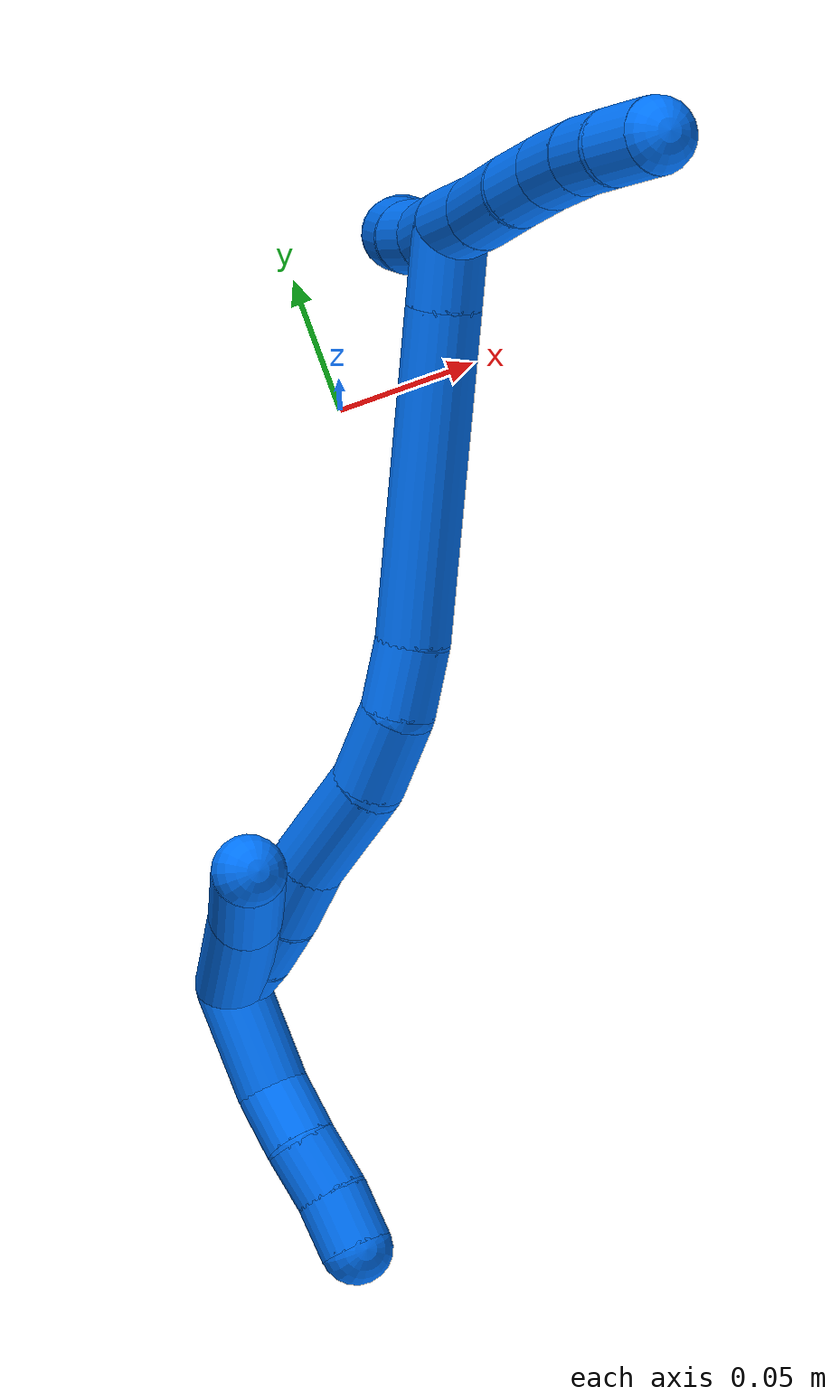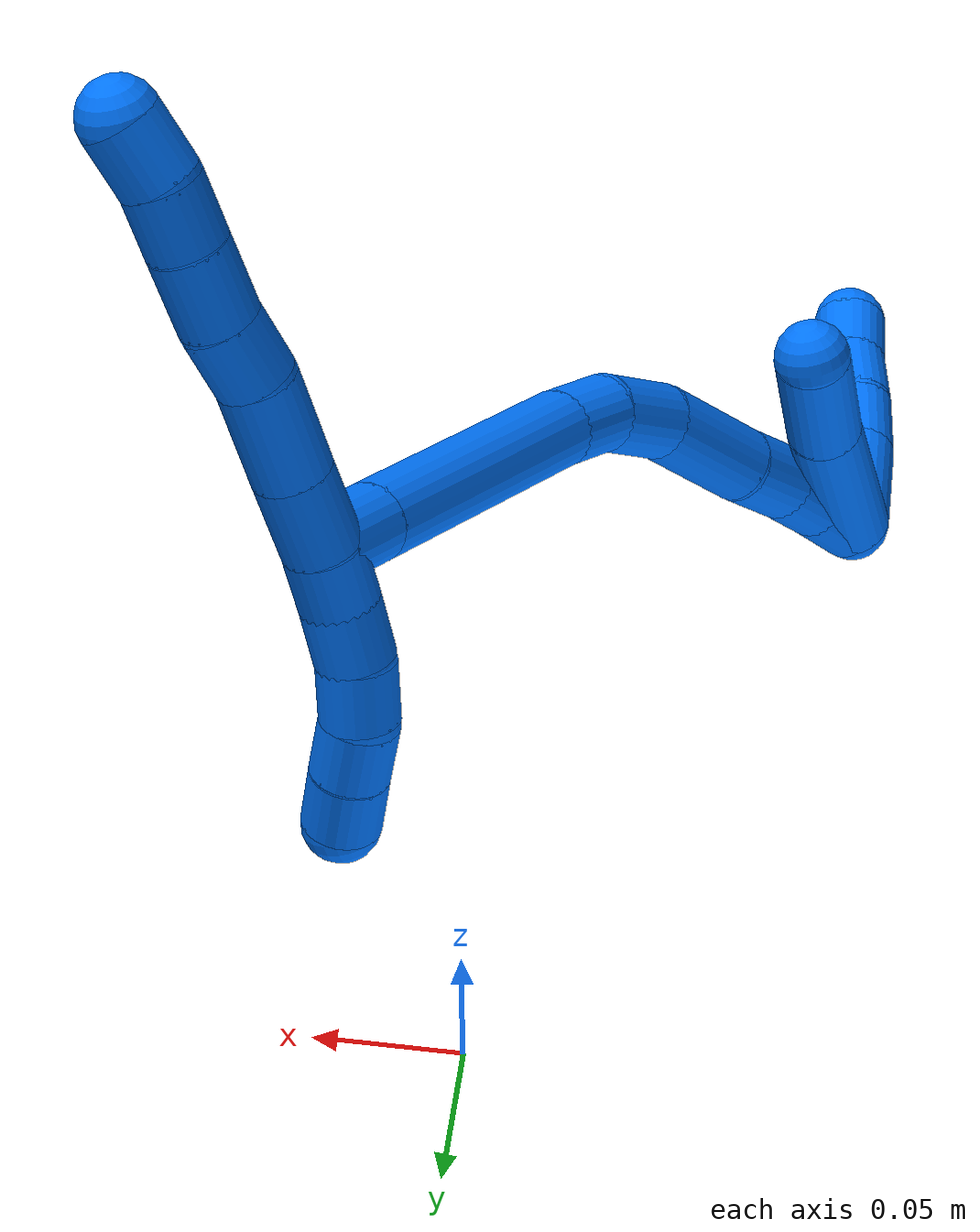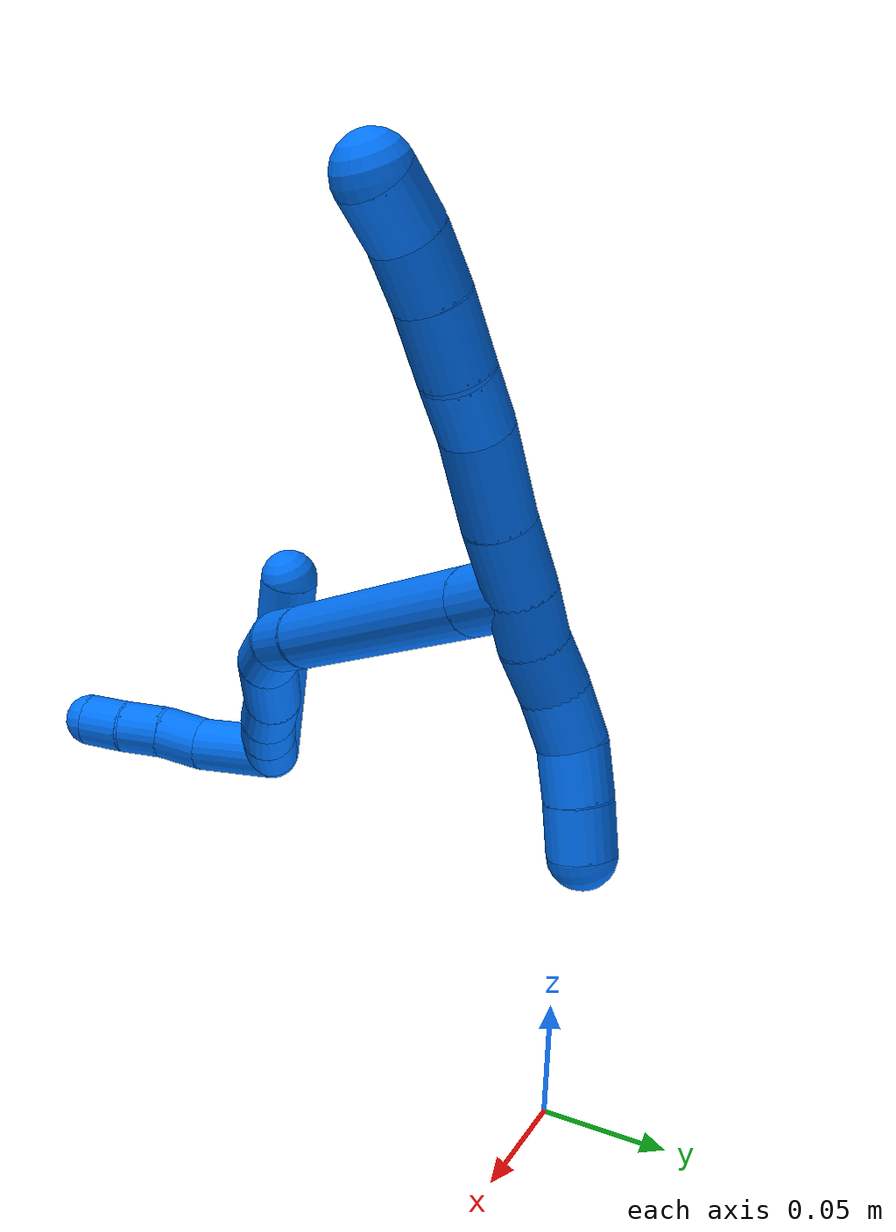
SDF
<sdf version="1.7">
 <world name="default">
  <model name="photoneo_s_sensor">
   <static>1</static>
   <pose>0 0 2 1.57079 1.57079 3.14159</pose>
   <link name="link">
    <inertial><mass>0.1</mass></inertial>
    <sensor name="sensor" type="depth">
     <update_rate>30</update_rate>
     <camera>
      <horizontal_fov>1.22</horizontal_fov>
      <image><width>1920</width><height>1200</height><format>B8G8R8</format></image>
      <clip><near>0.1</near><far>4</far></clip>
      <depth_camera><output>points</output></depth_camera>
     </camera>
     <plugin name="camera_plugin" filename="libgazebo_ros_depth_camera.so">
      <baseline>0.2</baseline>
      <alwaysOn>1</alwaysOn>
      <updateRate>0.0</updateRate>
      <cameraName>camera_ir</cameraName>
      <imageTopicName>/camera/color/image_raw</imageTopicName>
      <cameraInfoTopicName>/camera/color/camera_info</cameraInfoTopicName>
      <depthImageTopicName>/camera/depth/image_raw</depthImageTopicName>
      <depthImageCameraInfoTopicName>/camera/depth/camera_info</depthImageCameraInfoTopicName>
      <pointCloudTopicName>/camera/depth/points</pointCloudTopicName>
      <frameName>fr_optical</frameName>
      <pointCloudCutoff>0.1</pointCloudCutoff>
      <pointCloudCutoffMax>2.0</pointCloudCutoffMax>
      <distortionK1>0</distortionK1>
      <distortionK2>0</distortionK2>
      <distortionK3>0</distortionK3>
      <distortionT1>0</distortionT1>
      <distortionT2>0</distortionT2>
      <CxPrime>0</CxPrime>
      <Cx>0</Cx>
      <Cy>0</Cy>
      <focalLength>0</focalLength>
      <hackBaseline>0</hackBaseline>
     </plugin>
    </sensor>
   </link>
  </model>
  <model name="bin">
   <static>1</static>
   <link name="bottom">
    <collision name="collision-bottom">
     <pose>0 0 -0.01 0 -0 0</pose>
     <geometry><box><size>0.8 0.6 0.02</size></box></geometry>
     <surface>
      <friction><ode><mu>100</mu><mu2>100</mu2></ode></friction>
      <contact><collide_bitmask>65535</collide_bitmask></contact>
     </surface>
    </collision>
   </link>
   <link name="west_wall">
    <collision name="collision-west_wall">
     <pose>-0.41 0 0.1 0 -0 0</pose>
     <geometry><box><size>0.02 0.6 0.2</size></box></geometry>
     <surface>
      <friction><ode><mu>100</mu><mu2>100</mu2></ode></friction>
      <contact><collide_bitmask>65535</collide_bitmask></contact>
     </surface>
    </collision>
   </link>
   <link name="east_wall">
    <collision name="collision-east_wall">
     <pose>0.41 0 0.1 0 -0 0</pose>
     <geometry><box><size>0.02 0.6 0.2</size></box></geometry>
     <surface>
      <friction><ode><mu>100</mu><mu2>100</mu2></ode></friction>
      <contact><collide_bitmask>65535</collide_bitmask></contact>
     </surface>
    </collision>
   </link>
   <link name="south_wall">
    <collision name="collision-south_wall">
     <pose>0 -0.31 0.1 0 -0 0</pose>
     <geometry><box><size>0.8 0.02 0.2</size></box></geometry>
     <surface>
      <friction><ode><mu>100</mu><mu2>100</mu2></ode></friction>
      <contact><collide_bitmask>65535</collide_bitmask></contact>
     </surface>
    </collision>
   </link>
   <link name="north_wall">
    <collision name="collision-north_wall">
     <pose>0 0.31 0.1 0 -0 0</pose>
     <geometry><box><size>0.8 0.02 0.2</size></box></geometry>
     <surface>
      <friction><ode><mu>100</mu><mu2>100</mu2></ode></friction>
      <contact><collide_bitmask>65535</collide_bitmask></contact>
     </surface>
    </collision>
   </link>
  </model>
  <model name="14">
   <static>0</static>
   <link name="14">
    <collision name="collision-cylinder-e_1_2_8">
     <pose>0.001197 0.000298 0.01345 -0.022117 0.088757 -0.000982</pose>
     <geometry><cylinder><radius>0.0125</radius><length>0.027012</length></cylinder></geometry>
     <surface>
      <friction><ode><mu>1.16</mu><mu2>1.16</mu2><slip1>0</slip1><slip2>0</slip2></ode></friction>
      <contact><ode><kp>1e+06</kp><kd>1</kd><max_vel>0</max_vel><min_depth>0.001</min_depth></ode></contact>
     </surface>
    </collision>
    <visual name="visual-cylinder-e_1_2_8">
     <pose>0.001197 0.000298 0.01345 -0.022117 0.088757 -0.000982</pose>
     <geometry><cylinder><radius>0.0125</radius><length>0.027012</length></cylinder></geometry>
     <material><ambient>0 0.462745 1 1</ambient></material>
    </visual>
    <collision name="collision-cylinder-e_2_8_9">
     <pose>0.003398 0.001806 0.043804 -0.071481 0.059152 -0.002116</pose>
     <geometry><cylinder><radius>0.0125</radius><length>0.033956</length></cylinder></geometry>
     <surface>
      <friction><ode><mu>1.16</mu><mu2>1.16</mu2><slip1>0</slip1><slip2>0</slip2></ode></friction>
      <contact><ode><kp>1e+06</kp><kd>1</kd><max_vel>0</max_vel><min_depth>0.001</min_depth></ode></contact>
     </surface>
    </collision>
    <visual name="visual-cylinder-e_2_8_9">
     <pose>0.003398 0.001806 0.043804 -0.071481 0.059152 -0.002116</pose>
     <geometry><cylinder><radius>0.0125</radius><length>0.033956</length></cylinder></geometry>
     <material><ambient>0 0.462745 1 1</ambient></material>
    </visual>
    <collision name="collision-cylinder-e_3_9_10">
     <pose>0.0069 0.00381 0.0712 -0.075554 0.233183 -0.008853</pose>
     <geometry><cylinder><radius>0.0125</radius><length>0.021626</length></cylinder></geometry>
     <surface>
      <friction><ode><mu>1.16</mu><mu2>1.16</mu2><slip1>0</slip1><slip2>0</slip2></ode></friction>
      <contact><ode><kp>1e+06</kp><kd>1</kd><max_vel>0</max_vel><min_depth>0.001</min_depth></ode></contact>
     </surface>
    </collision>
    <visual name="visual-cylinder-e_3_9_10">
     <pose>0.0069 0.00381 0.0712 -0.075554 0.233183 -0.008853</pose>
     <geometry><cylinder><radius>0.0125</radius><length>0.021626</length></cylinder></geometry>
     <material><ambient>0 0.462745 1 1</ambient></material>
    </visual>
    <collision name="collision-cylinder-e_4_10_11">
     <pose>0.01075 0.004898 0.094259 -0.02338 0.107045 -0.001253</pose>
     <geometry><cylinder><radius>0.0125</radius><length>0.025288</length></cylinder></geometry>
     <surface>
      <friction><ode><mu>1.16</mu><mu2>1.16</mu2><slip1>0</slip1><slip2>0</slip2></ode></friction>
      <contact><ode><kp>1e+06</kp><kd>1</kd><max_vel>0</max_vel><min_depth>0.001</min_depth></ode></contact>
     </surface>
    </collision>
    <visual name="visual-cylinder-e_4_10_11">
     <pose>0.01075 0.004898 0.094259 -0.02338 0.107045 -0.001253</pose>
     <geometry><cylinder><radius>0.0125</radius><length>0.025288</length></cylinder></geometry>
     <material><ambient>0 0.462745 1 1</ambient></material>
    </visual>
    <collision name="collision-cylinder-e_5_11_12">
     <pose>0.013385 0.004779 0.117189 0.039848 0.123204 0.002458</pose>
     <geometry><cylinder><radius>0.0125</radius><length>0.020899</length></cylinder></geometry>
     <surface>
      <friction><ode><mu>1.16</mu><mu2>1.16</mu2><slip1>0</slip1><slip2>0</slip2></ode></friction>
      <contact><ode><kp>1e+06</kp><kd>1</kd><max_vel>0</max_vel><min_depth>0.001</min_depth></ode></contact>
     </surface>
    </collision>
    <visual name="visual-cylinder-e_5_11_12">
     <pose>0.013385 0.004779 0.117189 0.039848 0.123204 0.002458</pose>
     <geometry><cylinder><radius>0.0125</radius><length>0.020899</length></cylinder></geometry>
     <material><ambient>0 0.462745 1 1</ambient></material>
    </visual>
    <collision name="collision-cylinder-e_6_12_6">
     <pose>0.018008 0.003689 0.137598 0.067287 0.320156 0.010868</pose>
     <geometry><cylinder><radius>0.0125</radius><length>0.021218</length></cylinder></geometry>
     <surface>
      <friction><ode><mu>1.16</mu><mu2>1.16</mu2><slip1>0</slip1><slip2>0</slip2></ode></friction>
      <contact><ode><kp>1e+06</kp><kd>1</kd><max_vel>0</max_vel><min_depth>0.001</min_depth></ode></contact>
     </surface>
    </collision>
    <visual name="visual-cylinder-e_6_12_6">
     <pose>0.018008 0.003689 0.137598 0.067287 0.320156 0.010868</pose>
     <geometry><cylinder><radius>0.0125</radius><length>0.021218</length></cylinder></geometry>
     <material><ambient>0 0.462745 1 1</ambient></material>
    </visual>
    <collision name="collision-cylinder-e_1_2_13">
     <pose>-0.000116 -0.000501 -0.009987 3.09152 -0.011574 -0.454174</pose>
     <geometry><cylinder><radius>0.0125</radius><length>0.02</length></cylinder></geometry>
     <surface>
      <friction><ode><mu>1.16</mu><mu2>1.16</mu2><slip1>0</slip1><slip2>0</slip2></ode></friction>
      <contact><ode><kp>1e+06</kp><kd>1</kd><max_vel>0</max_vel><min_depth>0.001</min_depth></ode></contact>
     </surface>
    </collision>
    <visual name="visual-cylinder-e_1_2_13">
     <pose>-0.000116 -0.000501 -0.009987 3.09152 -0.011574 -0.454174</pose>
     <geometry><cylinder><radius>0.0125</radius><length>0.02</length></cylinder></geometry>
     <material><ambient>0 0.462745 1 1</ambient></material>
    </visual>
    <collision name="collision-cylinder-e_2_13_14">
     <pose>-0.00052 9.3e-05 -0.029909 -3.03192 -0.028846 0.513913</pose>
     <geometry><cylinder><radius>0.0125</radius><length>0.02</length></cylinder></geometry>
     <surface>
      <friction><ode><mu>1.16</mu><mu2>1.16</mu2><slip1>0</slip1><slip2>0</slip2></ode></friction>
      <contact><ode><kp>1e+06</kp><kd>1</kd><max_vel>0</max_vel><min_depth>0.001</min_depth></ode></contact>
     </surface>
    </collision>
    <visual name="visual-cylinder-e_2_13_14">
     <pose>-0.00052 9.3e-05 -0.029909 -3.03192 -0.028846 0.513913</pose>
     <geometry><cylinder><radius>0.0125</radius><length>0.02</length></cylinder></geometry>
     <material><ambient>0 0.462745 1 1</ambient></material>
    </visual>
    <collision name="collision-cylinder-e_3_14_15">
     <pose>0.000756 0.002457 -0.04964 -3.01264 0.157075 -1.76749</pose>
     <geometry><cylinder><radius>0.0125</radius><length>0.02</length></cylinder></geometry>
     <surface>
      <friction><ode><mu>1.16</mu><mu2>1.16</mu2><slip1>0</slip1><slip2>0</slip2></ode></friction>
      <contact><ode><kp>1e+06</kp><kd>1</kd><max_vel>0</max_vel><min_depth>0.001</min_depth></ode></contact>
     </surface>
    </collision>
    <visual name="visual-cylinder-e_3_14_15">
     <pose>0.000756 0.002457 -0.04964 -3.01264 0.157075 -1.76749</pose>
     <geometry><cylinder><radius>0.0125</radius><length>0.02</length></cylinder></geometry>
     <material><ambient>0 0.462745 1 1</ambient></material>
    </visual>
    <collision name="collision-cylinder-e_4_15_16">
     <pose>0.006099 0.003798 -0.068693 -3.13396 0.387506 -3.10271</pose>
     <geometry><cylinder><radius>0.0125</radius><length>0.02</length></cylinder></geometry>
     <surface>
      <friction><ode><mu>1.16</mu><mu2>1.16</mu2><slip1>0</slip1><slip2>0</slip2></ode></friction>
      <contact><ode><kp>1e+06</kp><kd>1</kd><max_vel>0</max_vel><min_depth>0.001</min_depth></ode></contact>
     </surface>
    </collision>
    <visual name="visual-cylinder-e_4_15_16">
     <pose>0.006099 0.003798 -0.068693 -3.13396 0.387506 -3.10271</pose>
     <geometry><cylinder><radius>0.0125</radius><length>0.02</length></cylinder></geometry>
     <material><ambient>0 0.462745 1 1</ambient></material>
    </visual>
    <collision name="collision-cylinder-e_5_16_5">
     <pose>0.013468 0.003347 -0.08727 3.08571 0.367205 2.84282</pose>
     <geometry><cylinder><radius>0.0125</radius><length>0.02</length></cylinder></geometry>
     <surface>
      <friction><ode><mu>1.16</mu><mu2>1.16</mu2><slip1>0</slip1><slip2>0</slip2></ode></friction>
      <contact><ode><kp>1e+06</kp><kd>1</kd><max_vel>0</max_vel><min_depth>0.001</min_depth></ode></contact>
     </surface>
    </collision>
    <visual name="visual-cylinder-e_5_16_5">
     <pose>0.013468 0.003347 -0.08727 3.08571 0.367205 2.84282</pose>
     <geometry><cylinder><radius>0.0125</radius><length>0.02</length></cylinder></geometry>
     <material><ambient>0 0.462745 1 1</ambient></material>
    </visual>
    <collision name="collision-cylinder-e_1_2_17">
     <pose>-0.004692 -0.011679 -0.004261 1.92063 -0.360863 -0.510101</pose>
     <geometry><cylinder><radius>0.0125</radius><length>0.026575</length></cylinder></geometry>
     <surface>
      <friction><ode><mu>1.16</mu><mu2>1.16</mu2><slip1>0</slip1><slip2>0</slip2></ode></friction>
      <contact><ode><kp>1e+06</kp><kd>1</kd><max_vel>0</max_vel><min_depth>0.001</min_depth></ode></contact>
     </surface>
    </collision>
    <visual name="visual-cylinder-e_1_2_17">
     <pose>-0.004692 -0.011679 -0.004261 1.92063 -0.360863 -0.510101</pose>
     <geometry><cylinder><radius>0.0125</radius><length>0.026575</length></cylinder></geometry>
     <material><ambient>0 0.462745 1 1</ambient></material>
    </visual>
    <collision name="collision-cylinder-e_2_17_18">
     <pose>-0.029259 -0.072479 -0.026457 1.92088 -0.363216 -0.513484</pose>
     <geometry><cylinder><radius>0.0125</radius><length>0.111887</length></cylinder></geometry>
     <surface>
      <friction><ode><mu>1.16</mu><mu2>1.16</mu2><slip1>0</slip1><slip2>0</slip2></ode></friction>
      <contact><ode><kp>1e+06</kp><kd>1</kd><max_vel>0</max_vel><min_depth>0.001</min_depth></ode></contact>
     </surface>
    </collision>
    <visual name="visual-cylinder-e_2_17_18">
     <pose>-0.029259 -0.072479 -0.026457 1.92088 -0.363216 -0.513484</pose>
     <geometry><cylinder><radius>0.0125</radius><length>0.111887</length></cylinder></geometry>
     <material><ambient>0 0.462745 1 1</ambient></material>
    </visual>
    <collision name="collision-cylinder-e_3_18_19">
     <pose>-0.054702 -0.131727 -0.048632 1.96735 -0.469374 -0.689916</pose>
     <geometry><cylinder><radius>0.0125</radius><length>0.024618</length></cylinder></geometry>
     <surface>
      <friction><ode><mu>1.16</mu><mu2>1.16</mu2><slip1>0</slip1><slip2>0</slip2></ode></friction>
      <contact><ode><kp>1e+06</kp><kd>1</kd><max_vel>0</max_vel><min_depth>0.001</min_depth></ode></contact>
     </surface>
    </collision>
    <visual name="visual-cylinder-e_3_18_19">
     <pose>-0.054702 -0.131727 -0.048632 1.96735 -0.469374 -0.689916</pose>
     <geometry><cylinder><radius>0.0125</radius><length>0.024618</length></cylinder></geometry>
     <material><ambient>0 0.462745 1 1</ambient></material>
    </visual>
    <collision name="collision-cylinder-e_4_19_20">
     <pose>-0.066879 -0.151506 -0.061685 2.31071 -0.46818 -0.991175</pose>
     <geometry><cylinder><radius>0.0125</radius><length>0.029293</length></cylinder></geometry>
     <surface>
      <friction><ode><mu>1.16</mu><mu2>1.16</mu2><slip1>0</slip1><slip2>0</slip2></ode></friction>
      <contact><ode><kp>1e+06</kp><kd>1</kd><max_vel>0</max_vel><min_depth>0.001</min_depth></ode></contact>
     </surface>
    </collision>
    <visual name="visual-cylinder-e_4_19_20">
     <pose>-0.066879 -0.151506 -0.061685 2.31071 -0.46818 -0.991175</pose>
     <geometry><cylinder><radius>0.0125</radius><length>0.029293</length></cylinder></geometry>
     <material><ambient>0 0.462745 1 1</ambient></material>
    </visual>
    <collision name="collision-cylinder-e_5_20_21">
     <pose>-0.083186 -0.17072 -0.086605 2.60593 -0.47767 -1.45144</pose>
     <geometry><cylinder><radius>0.0125</radius><length>0.042187</length></cylinder></geometry>
     <surface>
      <friction><ode><mu>1.16</mu><mu2>1.16</mu2><slip1>0</slip1><slip2>0</slip2></ode></friction>
      <contact><ode><kp>1e+06</kp><kd>1</kd><max_vel>0</max_vel><min_depth>0.001</min_depth></ode></contact>
     </surface>
    </collision>
    <visual name="visual-cylinder-e_5_20_21">
     <pose>-0.083186 -0.17072 -0.086605 2.60593 -0.47767 -1.45144</pose>
     <geometry><cylinder><radius>0.0125</radius><length>0.042187</length></cylinder></geometry>
     <material><ambient>0 0.462745 1 1</ambient></material>
    </visual>
    <collision name="collision-cylinder-e_6_21_22">
     <pose>-0.097981 -0.187376 -0.111708 2.47369 -0.418772 -1.09911</pose>
     <geometry><cylinder><radius>0.0125</radius><length>0.025079</length></cylinder></geometry>
     <surface>
      <friction><ode><mu>1.16</mu><mu2>1.16</mu2><slip1>0</slip1><slip2>0</slip2></ode></friction>
      <contact><ode><kp>1e+06</kp><kd>1</kd><max_vel>0</max_vel><min_depth>0.001</min_depth></ode></contact>
     </surface>
    </collision>
    <visual name="visual-cylinder-e_6_21_22">
     <pose>-0.097981 -0.187376 -0.111708 2.47369 -0.418772 -1.09911</pose>
     <geometry><cylinder><radius>0.0125</radius><length>0.025079</length></cylinder></geometry>
     <material><ambient>0 0.462745 1 1</ambient></material>
    </visual>
    <collision name="collision-cylinder-e_7_22_23">
     <pose>-0.107314 -0.199476 -0.128483 2.56998 -0.429155 -1.27626</pose>
     <geometry><cylinder><radius>0.0125</radius><length>0.020348</length></cylinder></geometry>
     <surface>
      <friction><ode><mu>1.16</mu><mu2>1.16</mu2><slip1>0</slip1><slip2>0</slip2></ode></friction>
      <contact><ode><kp>1e+06</kp><kd>1</kd><max_vel>0</max_vel><min_depth>0.001</min_depth></ode></contact>
     </surface>
    </collision>
    <visual name="visual-cylinder-e_7_22_23">
     <pose>-0.107314 -0.199476 -0.128483 2.56998 -0.429155 -1.27626</pose>
     <geometry><cylinder><radius>0.0125</radius><length>0.020348</length></cylinder></geometry>
     <material><ambient>0 0.462745 1 1</ambient></material>
    </visual>
    <collision name="collision-cylinder-e_8_23_1">
     <pose>-0.116035 -0.208605 -0.144201 2.66234 -0.465006 -1.53946</pose>
     <geometry><cylinder><radius>0.0125</radius><length>0.020014</length></cylinder></geometry>
     <surface>
      <friction><ode><mu>1.16</mu><mu2>1.16</mu2><slip1>0</slip1><slip2>0</slip2></ode></friction>
      <contact><ode><kp>1e+06</kp><kd>1</kd><max_vel>0</max_vel><min_depth>0.001</min_depth></ode></contact>
     </surface>
    </collision>
    <visual name="visual-cylinder-e_8_23_1">
     <pose>-0.116035 -0.208605 -0.144201 2.66234 -0.465006 -1.53946</pose>
     <geometry><cylinder><radius>0.0125</radius><length>0.020014</length></cylinder></geometry>
     <material><ambient>0 0.462745 1 1</ambient></material>
    </visual>
    <collision name="collision-cylinder-e_1_1_24">
     <pose>-0.121034 -0.20049 -0.125194 -0.426392 -0.01731 0.003747</pose>
     <geometry><cylinder><radius>0.0125</radius><length>0.059195</length></cylinder></geometry>
     <surface>
      <friction><ode><mu>1.16</mu><mu2>1.16</mu2><slip1>0</slip1><slip2>0</slip2></ode></friction>
      <contact><ode><kp>1e+06</kp><kd>1</kd><max_vel>0</max_vel><min_depth>0.001</min_depth></ode></contact>
     </surface>
    </collision>
    <visual name="visual-cylinder-e_1_1_24">
     <pose>-0.121034 -0.20049 -0.125194 -0.426392 -0.01731 0.003747</pose>
     <geometry><cylinder><radius>0.0125</radius><length>0.059195</length></cylinder></geometry>
     <material><ambient>0 0.462745 1 1</ambient></material>
    </visual>
    <collision name="collision-cylinder-e_2_24_4">
     <pose>-0.123275 -0.180143 -0.079608 -0.41023 -0.084795 0.017651</pose>
     <geometry><cylinder><radius>0.0125</radius><length>0.040805</length></cylinder></geometry>
     <surface>
      <friction><ode><mu>1.16</mu><mu2>1.16</mu2><slip1>0</slip1><slip2>0</slip2></ode></friction>
      <contact><ode><kp>1e+06</kp><kd>1</kd><max_vel>0</max_vel><min_depth>0.001</min_depth></ode></contact>
     </surface>
    </collision>
    <visual name="visual-cylinder-e_2_24_4">
     <pose>-0.123275 -0.180143 -0.079608 -0.41023 -0.084795 0.017651</pose>
     <geometry><cylinder><radius>0.0125</radius><length>0.040805</length></cylinder></geometry>
     <material><ambient>0 0.462745 1 1</ambient></material>
    </visual>
    <collision name="collision-cylinder-e_1_1_25">
     <pose>-0.12107 -0.23178 -0.150138 1.46623 -0.028584 -0.025741</pose>
     <geometry><cylinder><radius>0.0125</radius><length>0.038326</length></cylinder></geometry>
     <surface>
      <friction><ode><mu>1.16</mu><mu2>1.16</mu2><slip1>0</slip1><slip2>0</slip2></ode></friction>
      <contact><ode><kp>1e+06</kp><kd>1</kd><max_vel>0</max_vel><min_depth>0.001</min_depth></ode></contact>
     </surface>
    </collision>
    <visual name="visual-cylinder-e_1_1_25">
     <pose>-0.12107 -0.23178 -0.150138 1.46623 -0.028584 -0.025741</pose>
     <geometry><cylinder><radius>0.0125</radius><length>0.038326</length></cylinder></geometry>
     <material><ambient>0 0.462745 1 1</ambient></material>
    </visual>
    <collision name="collision-cylinder-e_2_25_26">
     <pose>-0.121496 -0.260757 -0.14432 1.20355 0.011443 0.007859</pose>
     <geometry><cylinder><radius>0.0125</radius><length>0.021272</length></cylinder></geometry>
     <surface>
      <friction><ode><mu>1.16</mu><mu2>1.16</mu2><slip1>0</slip1><slip2>0</slip2></ode></friction>
      <contact><ode><kp>1e+06</kp><kd>1</kd><max_vel>0</max_vel><min_depth>0.001</min_depth></ode></contact>
     </surface>
    </collision>
    <visual name="visual-cylinder-e_2_25_26">
     <pose>-0.121496 -0.260757 -0.14432 1.20355 0.011443 0.007859</pose>
     <geometry><cylinder><radius>0.0125</radius><length>0.021272</length></cylinder></geometry>
     <material><ambient>0 0.462745 1 1</ambient></material>
    </visual>
    <collision name="collision-cylinder-e_3_26_27">
     <pose>-0.120328 -0.280493 -0.137972 1.31843 0.102846 0.079718</pose>
     <geometry><cylinder><radius>0.0125</radius><length>0.020369</length></cylinder></geometry>
     <surface>
      <friction><ode><mu>1.16</mu><mu2>1.16</mu2><slip1>0</slip1><slip2>0</slip2></ode></friction>
      <contact><ode><kp>1e+06</kp><kd>1</kd><max_vel>0</max_vel><min_depth>0.001</min_depth></ode></contact>
     </surface>
    </collision>
    <visual name="visual-cylinder-e_3_26_27">
     <pose>-0.120328 -0.280493 -0.137972 1.31843 0.102846 0.079718</pose>
     <geometry><cylinder><radius>0.0125</radius><length>0.020369</length></cylinder></geometry>
     <material><ambient>0 0.462745 1 1</ambient></material>
    </visual>
    <collision name="collision-cylinder-e_4_27_3">
     <pose>-0.11936 -0.300078 -0.133259 1.35107 -0.007682 -0.006156</pose>
     <geometry><cylinder><radius>0.0125</radius><length>0.020033</length></cylinder></geometry>
     <surface>
      <friction><ode><mu>1.16</mu><mu2>1.16</mu2><slip1>0</slip1><slip2>0</slip2></ode></friction>
      <contact><ode><kp>1e+06</kp><kd>1</kd><max_vel>0</max_vel><min_depth>0.001</min_depth></ode></contact>
     </surface>
    </collision>
    <visual name="visual-cylinder-e_4_27_3">
     <pose>-0.11936 -0.300078 -0.133259 1.35107 -0.007682 -0.006156</pose>
     <geometry><cylinder><radius>0.0125</radius><length>0.020033</length></cylinder></geometry>
     <material><ambient>0 0.462745 1 1</ambient></material>
    </visual>
    <collision name="collision-sphere-3">
     <pose>-0.119437 -0.309853 -0.131076 0 -0 0</pose>
     <geometry><sphere><radius>0.0125</radius></sphere></geometry>
     <surface>
      <friction><ode><mu>1.16</mu><mu2>1.16</mu2><slip1>0</slip1><slip2>0</slip2></ode></friction>
      <contact><ode><kp>1e+06</kp><kd>1</kd><max_vel>0</max_vel><min_depth>0.001</min_depth></ode></contact>
     </surface>
    </collision>
    <visual name="visual-sphere-3">
     <pose>-0.119437 -0.309853 -0.131076 0 -0 0</pose>
     <geometry><sphere><radius>0.0125</radius></sphere></geometry>
     <material><ambient>0 0.462745 1 1</ambient></material>
    </visual>
    <collision name="collision-sphere-27">
     <pose>-0.119283 -0.290303 -0.135442 0 -0 0</pose>
     <geometry><sphere><radius>0.0125</radius></sphere></geometry>
     <surface>
      <friction><ode><mu>1.16</mu><mu2>1.16</mu2><slip1>0</slip1><slip2>0</slip2></ode></friction>
      <contact><ode><kp>1e+06</kp><kd>1</kd><max_vel>0</max_vel><min_depth>0.001</min_depth></ode></contact>
     </surface>
    </collision>
    <visual name="visual-sphere-27">
     <pose>-0.119283 -0.290303 -0.135442 0 -0 0</pose>
     <geometry><sphere><radius>0.0125</radius></sphere></geometry>
     <material><ambient>0 0.462745 1 1</ambient></material>
    </visual>
    <collision name="collision-sphere-26">
     <pose>-0.121374 -0.270683 -0.140501 0 -0 0</pose>
     <geometry><sphere><radius>0.0125</radius></sphere></geometry>
     <surface>
      <friction><ode><mu>1.16</mu><mu2>1.16</mu2><slip1>0</slip1><slip2>0</slip2></ode></friction>
      <contact><ode><kp>1e+06</kp><kd>1</kd><max_vel>0</max_vel><min_depth>0.001</min_depth></ode></contact>
     </surface>
    </collision>
    <visual name="visual-sphere-26">
     <pose>-0.121374 -0.270683 -0.140501 0 -0 0</pose>
     <geometry><sphere><radius>0.0125</radius></sphere></geometry>
     <material><ambient>0 0.462745 1 1</ambient></material>
    </visual>
    <collision name="collision-sphere-25">
     <pose>-0.121617 -0.250831 -0.148139 0 -0 0</pose>
     <geometry><sphere><radius>0.0125</radius></sphere></geometry>
     <surface>
      <friction><ode><mu>1.16</mu><mu2>1.16</mu2><slip1>0</slip1><slip2>0</slip2></ode></friction>
      <contact><ode><kp>1e+06</kp><kd>1</kd><max_vel>0</max_vel><min_depth>0.001</min_depth></ode></contact>
     </surface>
    </collision>
    <visual name="visual-sphere-25">
     <pose>-0.121617 -0.250831 -0.148139 0 -0 0</pose>
     <geometry><sphere><radius>0.0125</radius></sphere></geometry>
     <material><ambient>0 0.462745 1 1</ambient></material>
    </visual>
    <collision name="collision-sphere-4">
     <pose>-0.125003 -0.172035 -0.060966 0 -0 0</pose>
     <geometry><sphere><radius>0.0125</radius></sphere></geometry>
     <surface>
      <friction><ode><mu>1.16</mu><mu2>1.16</mu2><slip1>0</slip1><slip2>0</slip2></ode></friction>
      <contact><ode><kp>1e+06</kp><kd>1</kd><max_vel>0</max_vel><min_depth>0.001</min_depth></ode></contact>
     </surface>
    </collision>
    <visual name="visual-sphere-4">
     <pose>-0.125003 -0.172035 -0.060966 0 -0 0</pose>
     <geometry><sphere><radius>0.0125</radius></sphere></geometry>
     <material><ambient>0 0.462745 1 1</ambient></material>
    </visual>
    <collision name="collision-sphere-24">
     <pose>-0.121547 -0.188251 -0.098251 0 -0 0</pose>
     <geometry><sphere><radius>0.0125</radius></sphere></geometry>
     <surface>
      <friction><ode><mu>1.16</mu><mu2>1.16</mu2><slip1>0</slip1><slip2>0</slip2></ode></friction>
      <contact><ode><kp>1e+06</kp><kd>1</kd><max_vel>0</max_vel><min_depth>0.001</min_depth></ode></contact>
     </surface>
    </collision>
    <visual name="visual-sphere-24">
     <pose>-0.121547 -0.188251 -0.098251 0 -0 0</pose>
     <geometry><sphere><radius>0.0125</radius></sphere></geometry>
     <material><ambient>0 0.462745 1 1</ambient></material>
    </visual>
    <collision name="collision-sphere-1">
     <pose>-0.120522 -0.21273 -0.152137 0 -0 0</pose>
     <geometry><sphere><radius>0.0125</radius></sphere></geometry>
     <surface>
      <friction><ode><mu>1.16</mu><mu2>1.16</mu2><slip1>0</slip1><slip2>0</slip2></ode></friction>
      <contact><ode><kp>1e+06</kp><kd>1</kd><max_vel>0</max_vel><min_depth>0.001</min_depth></ode></contact>
     </surface>
    </collision>
    <visual name="visual-sphere-1">
     <pose>-0.120522 -0.21273 -0.152137 0 -0 0</pose>
     <geometry><sphere><radius>0.0125</radius></sphere></geometry>
     <material><ambient>0 0.462745 1 1</ambient></material>
    </visual>
    <collision name="collision-sphere-23">
     <pose>-0.111547 -0.204481 -0.136264 0 -0 0</pose>
     <geometry><sphere><radius>0.0125</radius></sphere></geometry>
     <surface>
      <friction><ode><mu>1.16</mu><mu2>1.16</mu2><slip1>0</slip1><slip2>0</slip2></ode></friction>
      <contact><ode><kp>1e+06</kp><kd>1</kd><max_vel>0</max_vel><min_depth>0.001</min_depth></ode></contact>
     </surface>
    </collision>
    <visual name="visual-sphere-23">
     <pose>-0.111547 -0.204481 -0.136264 0 -0 0</pose>
     <geometry><sphere><radius>0.0125</radius></sphere></geometry>
     <material><ambient>0 0.462745 1 1</ambient></material>
    </visual>
    <collision name="collision-sphere-22">
     <pose>-0.10308 -0.194471 -0.120702 0 -0 0</pose>
     <geometry><sphere><radius>0.0125</radius></sphere></geometry>
     <surface>
      <friction><ode><mu>1.16</mu><mu2>1.16</mu2><slip1>0</slip1><slip2>0</slip2></ode></friction>
      <contact><ode><kp>1e+06</kp><kd>1</kd><max_vel>0</max_vel><min_depth>0.001</min_depth></ode></contact>
     </surface>
    </collision>
    <visual name="visual-sphere-22">
     <pose>-0.10308 -0.194471 -0.120702 0 -0 0</pose>
     <geometry><sphere><radius>0.0125</radius></sphere></geometry>
     <material><ambient>0 0.462745 1 1</ambient></material>
    </visual>
    <collision name="collision-sphere-21">
     <pose>-0.092882 -0.180281 -0.102714 0 -0 0</pose>
     <geometry><sphere><radius>0.0125</radius></sphere></geometry>
     <surface>
      <friction><ode><mu>1.16</mu><mu2>1.16</mu2><slip1>0</slip1><slip2>0</slip2></ode></friction>
      <contact><ode><kp>1e+06</kp><kd>1</kd><max_vel>0</max_vel><min_depth>0.001</min_depth></ode></contact>
     </surface>
    </collision>
    <visual name="visual-sphere-21">
     <pose>-0.092882 -0.180281 -0.102714 0 -0 0</pose>
     <geometry><sphere><radius>0.0125</radius></sphere></geometry>
     <material><ambient>0 0.462745 1 1</ambient></material>
    </visual>
    <collision name="collision-sphere-12">
     <pose>0.014669 0.004366 0.127551 0 -0 0</pose>
     <geometry><sphere><radius>0.0125</radius></sphere></geometry>
     <surface>
      <friction><ode><mu>1.16</mu><mu2>1.16</mu2><slip1>0</slip1><slip2>0</slip2></ode></friction>
      <contact><ode><kp>1e+06</kp><kd>1</kd><max_vel>0</max_vel><min_depth>0.001</min_depth></ode></contact>
     </surface>
    </collision>
    <visual name="visual-sphere-12">
     <pose>0.014669 0.004366 0.127551 0 -0 0</pose>
     <geometry><sphere><radius>0.0125</radius></sphere></geometry>
     <material><ambient>0 0.462745 1 1</ambient></material>
    </visual>
    <collision name="collision-sphere-11">
     <pose>0.012101 0.005192 0.106827 0 -0 0</pose>
     <geometry><sphere><radius>0.0125</radius></sphere></geometry>
     <surface>
      <friction><ode><mu>1.16</mu><mu2>1.16</mu2><slip1>0</slip1><slip2>0</slip2></ode></friction>
      <contact><ode><kp>1e+06</kp><kd>1</kd><max_vel>0</max_vel><min_depth>0.001</min_depth></ode></contact>
     </surface>
    </collision>
    <visual name="visual-sphere-11">
     <pose>0.012101 0.005192 0.106827 0 -0 0</pose>
     <geometry><sphere><radius>0.0125</radius></sphere></geometry>
     <material><ambient>0 0.462745 1 1</ambient></material>
    </visual>
    <collision name="collision-sphere-10">
     <pose>0.009399 0.004604 0.081691 0 -0 0</pose>
     <geometry><sphere><radius>0.0125</radius></sphere></geometry>
     <surface>
      <friction><ode><mu>1.16</mu><mu2>1.16</mu2><slip1>0</slip1><slip2>0</slip2></ode></friction>
      <contact><ode><kp>1e+06</kp><kd>1</kd><max_vel>0</max_vel><min_depth>0.001</min_depth></ode></contact>
     </surface>
    </collision>
    <visual name="visual-sphere-10">
     <pose>0.009399 0.004604 0.081691 0 -0 0</pose>
     <geometry><sphere><radius>0.0125</radius></sphere></geometry>
     <material><ambient>0 0.462745 1 1</ambient></material>
    </visual>
    <collision name="collision-sphere-9">
     <pose>0.004402 0.003016 0.06071 0 -0 0</pose>
     <geometry><sphere><radius>0.0125</radius></sphere></geometry>
     <surface>
      <friction><ode><mu>1.16</mu><mu2>1.16</mu2><slip1>0</slip1><slip2>0</slip2></ode></friction>
      <contact><ode><kp>1e+06</kp><kd>1</kd><max_vel>0</max_vel><min_depth>0.001</min_depth></ode></contact>
     </surface>
    </collision>
    <visual name="visual-sphere-9">
     <pose>0.004402 0.003016 0.06071 0 -0 0</pose>
     <geometry><sphere><radius>0.0125</radius></sphere></geometry>
     <material><ambient>0 0.462745 1 1</ambient></material>
    </visual>
    <collision name="collision-sphere-2">
     <geometry><sphere><radius>0.0125</radius></sphere></geometry>
     <surface>
      <friction><ode><mu>1.16</mu><mu2>1.16</mu2><slip1>0</slip1><slip2>0</slip2></ode></friction>
      <contact><ode><kp>1e+06</kp><kd>1</kd><max_vel>0</max_vel><min_depth>0.001</min_depth></ode></contact>
     </surface>
    </collision>
    <visual name="visual-sphere-2">
     <geometry><sphere><radius>0.0125</radius></sphere></geometry>
     <material><ambient>0 0.462745 1 1</ambient></material>
    </visual>
    <collision name="collision-sphere-19">
     <pose>-0.06027 -0.141853 -0.052872 0 -0 0</pose>
     <geometry><sphere><radius>0.0125</radius></sphere></geometry>
     <surface>
      <friction><ode><mu>1.16</mu><mu2>1.16</mu2><slip1>0</slip1><slip2>0</slip2></ode></friction>
      <contact><ode><kp>1e+06</kp><kd>1</kd><max_vel>0</max_vel><min_depth>0.001</min_depth></ode></contact>
     </surface>
    </collision>
    <visual name="visual-sphere-19">
     <pose>-0.06027 -0.141853 -0.052872 0 -0 0</pose>
     <geometry><sphere><radius>0.0125</radius></sphere></geometry>
     <material><ambient>0 0.462745 1 1</ambient></material>
    </visual>
    <collision name="collision-sphere-8">
     <pose>0.002394 0.000595 0.026899 0 -0 0</pose>
     <geometry><sphere><radius>0.0125</radius></sphere></geometry>
     <surface>
      <friction><ode><mu>1.16</mu><mu2>1.16</mu2><slip1>0</slip1><slip2>0</slip2></ode></friction>
      <contact><ode><kp>1e+06</kp><kd>1</kd><max_vel>0</max_vel><min_depth>0.001</min_depth></ode></contact>
     </surface>
    </collision>
    <visual name="visual-sphere-8">
     <pose>0.002394 0.000595 0.026899 0 -0 0</pose>
     <geometry><sphere><radius>0.0125</radius></sphere></geometry>
     <material><ambient>0 0.462745 1 1</ambient></material>
    </visual>
    <collision name="collision-sphere-6">
     <pose>0.021347 0.003012 0.147646 0 -0 0</pose>
     <geometry><sphere><radius>0.0125</radius></sphere></geometry>
     <surface>
      <friction><ode><mu>1.16</mu><mu2>1.16</mu2><slip1>0</slip1><slip2>0</slip2></ode></friction>
      <contact><ode><kp>1e+06</kp><kd>1</kd><max_vel>0</max_vel><min_depth>0.001</min_depth></ode></contact>
     </surface>
    </collision>
    <visual name="visual-sphere-6">
     <pose>0.021347 0.003012 0.147646 0 -0 0</pose>
     <geometry><sphere><radius>0.0125</radius></sphere></geometry>
     <material><ambient>0 0.462745 1 1</ambient></material>
    </visual>
    <collision name="collision-sphere-13">
     <pose>-0.000231 -0.001001 -0.019974 0 -0 0</pose>
     <geometry><sphere><radius>0.0125</radius></sphere></geometry>
     <surface>
      <friction><ode><mu>1.16</mu><mu2>1.16</mu2><slip1>0</slip1><slip2>0</slip2></ode></friction>
      <contact><ode><kp>1e+06</kp><kd>1</kd><max_vel>0</max_vel><min_depth>0.001</min_depth></ode></contact>
     </surface>
    </collision>
    <visual name="visual-sphere-13">
     <pose>-0.000231 -0.001001 -0.019974 0 -0 0</pose>
     <geometry><sphere><radius>0.0125</radius></sphere></geometry>
     <material><ambient>0 0.462745 1 1</ambient></material>
    </visual>
    <collision name="collision-sphere-14">
     <pose>-0.000808 0.001187 -0.039845 0 -0 0</pose>
     <geometry><sphere><radius>0.0125</radius></sphere></geometry>
     <surface>
      <friction><ode><mu>1.16</mu><mu2>1.16</mu2><slip1>0</slip1><slip2>0</slip2></ode></friction>
      <contact><ode><kp>1e+06</kp><kd>1</kd><max_vel>0</max_vel><min_depth>0.001</min_depth></ode></contact>
     </surface>
    </collision>
    <visual name="visual-sphere-14">
     <pose>-0.000808 0.001187 -0.039845 0 -0 0</pose>
     <geometry><sphere><radius>0.0125</radius></sphere></geometry>
     <material><ambient>0 0.462745 1 1</ambient></material>
    </visual>
    <collision name="collision-sphere-15">
     <pose>0.00232 0.003727 -0.059435 0 -0 0</pose>
     <geometry><sphere><radius>0.0125</radius></sphere></geometry>
     <surface>
      <friction><ode><mu>1.16</mu><mu2>1.16</mu2><slip1>0</slip1><slip2>0</slip2></ode></friction>
      <contact><ode><kp>1e+06</kp><kd>1</kd><max_vel>0</max_vel><min_depth>0.001</min_depth></ode></contact>
     </surface>
    </collision>
    <visual name="visual-sphere-15">
     <pose>0.00232 0.003727 -0.059435 0 -0 0</pose>
     <geometry><sphere><radius>0.0125</radius></sphere></geometry>
     <material><ambient>0 0.462745 1 1</ambient></material>
    </visual>
    <collision name="collision-sphere-16">
     <pose>0.009878 0.003869 -0.077951 0 -0 0</pose>
     <geometry><sphere><radius>0.0125</radius></sphere></geometry>
     <surface>
      <friction><ode><mu>1.16</mu><mu2>1.16</mu2><slip1>0</slip1><slip2>0</slip2></ode></friction>
      <contact><ode><kp>1e+06</kp><kd>1</kd><max_vel>0</max_vel><min_depth>0.001</min_depth></ode></contact>
     </surface>
    </collision>
    <visual name="visual-sphere-16">
     <pose>0.009878 0.003869 -0.077951 0 -0 0</pose>
     <geometry><sphere><radius>0.0125</radius></sphere></geometry>
     <material><ambient>0 0.462745 1 1</ambient></material>
    </visual>
    <collision name="collision-sphere-5">
     <pose>0.017058 0.002826 -0.096589 0 -0 0</pose>
     <geometry><sphere><radius>0.0125</radius></sphere></geometry>
     <surface>
      <friction><ode><mu>1.16</mu><mu2>1.16</mu2><slip1>0</slip1><slip2>0</slip2></ode></friction>
      <contact><ode><kp>1e+06</kp><kd>1</kd><max_vel>0</max_vel><min_depth>0.001</min_depth></ode></contact>
     </surface>
    </collision>
    <visual name="visual-sphere-5">
     <pose>0.017058 0.002826 -0.096589 0 -0 0</pose>
     <geometry><sphere><radius>0.0125</radius></sphere></geometry>
     <material><ambient>0 0.462745 1 1</ambient></material>
    </visual>
    <collision name="collision-sphere-17">
     <pose>-0.009383 -0.023357 -0.008522 0 -0 0</pose>
     <geometry><sphere><radius>0.0125</radius></sphere></geometry>
     <surface>
      <friction><ode><mu>1.16</mu><mu2>1.16</mu2><slip1>0</slip1><slip2>0</slip2></ode></friction>
      <contact><ode><kp>1e+06</kp><kd>1</kd><max_vel>0</max_vel><min_depth>0.001</min_depth></ode></contact>
     </surface>
    </collision>
    <visual name="visual-sphere-17">
     <pose>-0.009383 -0.023357 -0.008522 0 -0 0</pose>
     <geometry><sphere><radius>0.0125</radius></sphere></geometry>
     <material><ambient>0 0.462745 1 1</ambient></material>
    </visual>
    <collision name="collision-sphere-18">
     <pose>-0.049135 -0.121601 -0.044392 0 -0 0</pose>
     <geometry><sphere><radius>0.0125</radius></sphere></geometry>
     <surface>
      <friction><ode><mu>1.16</mu><mu2>1.16</mu2><slip1>0</slip1><slip2>0</slip2></ode></friction>
      <contact><ode><kp>1e+06</kp><kd>1</kd><max_vel>0</max_vel><min_depth>0.001</min_depth></ode></contact>
     </surface>
    </collision>
    <visual name="visual-sphere-18">
     <pose>-0.049135 -0.121601 -0.044392 0 -0 0</pose>
     <geometry><sphere><radius>0.0125</radius></sphere></geometry>
     <material><ambient>0 0.462745 1 1</ambient></material>
    </visual>
    <collision name="collision-sphere-20">
     <pose>-0.073489 -0.161158 -0.070497 0 -0 0</pose>
     <geometry><sphere><radius>0.0125</radius></sphere></geometry>
     <surface>
      <friction><ode><mu>1.16</mu><mu2>1.16</mu2><slip1>0</slip1><slip2>0</slip2></ode></friction>
      <contact><ode><kp>1e+06</kp><kd>1</kd><max_vel>0</max_vel><min_depth>0.001</min_depth></ode></contact>
     </surface>
    </collision>
    <visual name="visual-sphere-20">
     <pose>-0.073489 -0.161158 -0.070497 0 -0 0</pose>
     <geometry><sphere><radius>0.0125</radius></sphere></geometry>
     <material><ambient>0 0.462745 1 1</ambient></material>
    </visual>
    <inertial>
     <pose>-0.053085 -0.107962 -0.049018 0 -0 0</pose>
     <mass>0.75</mass>
     <inertia>
      <ixx>7.8e-05</ixx>
      <ixy>0</ixy>
      <ixz>0</ixz>
      <iyy>-6.8e-05</iyy>
      <iyz>0</iyz>
      <izz>0.000169</izz>
     </inertia>
    </inertial>
   </link>
   <pose>0.039299 -0.004027 0.232805 0.232574 0.227491 0.088371</pose>
  </model>
 </world>
</sdf>
